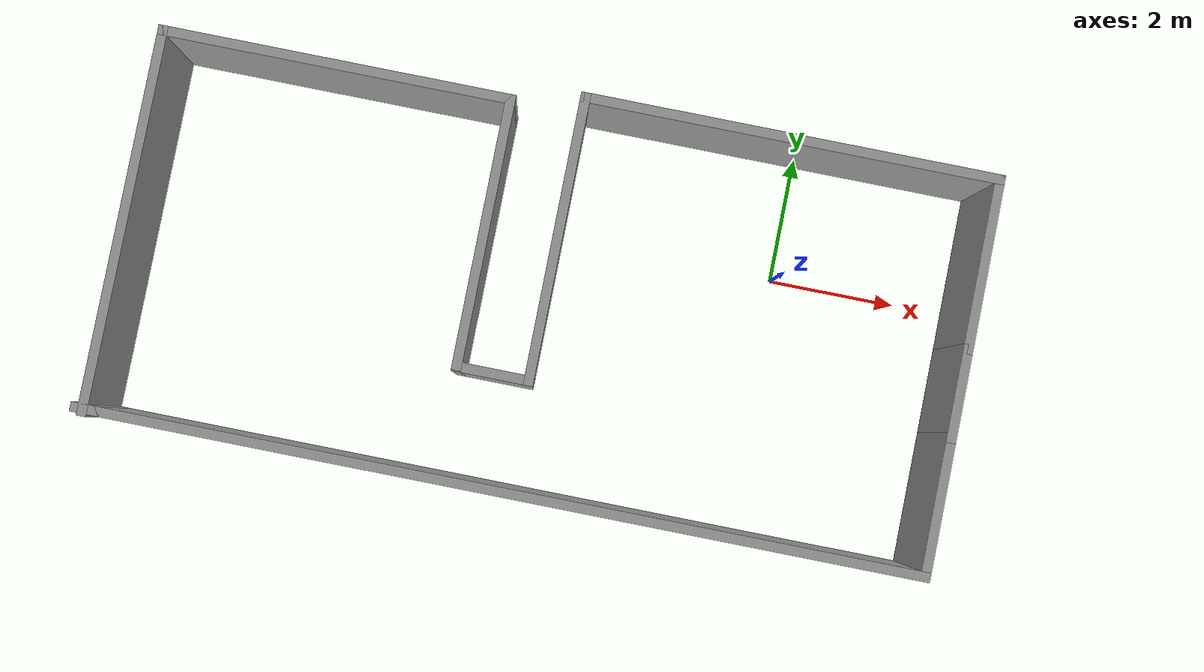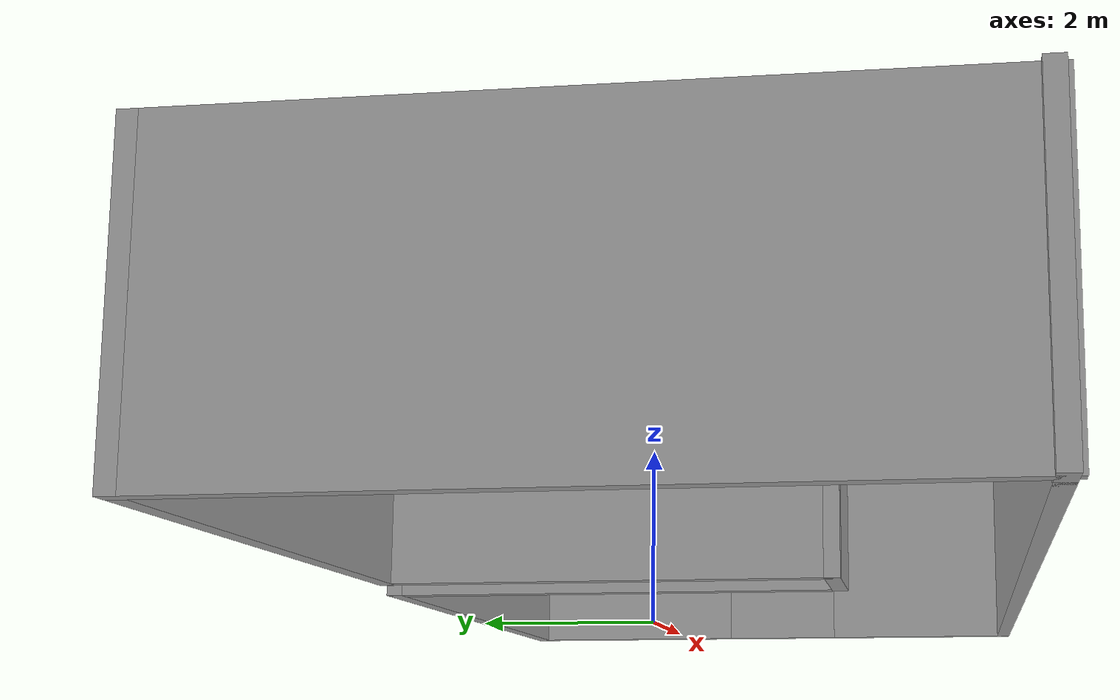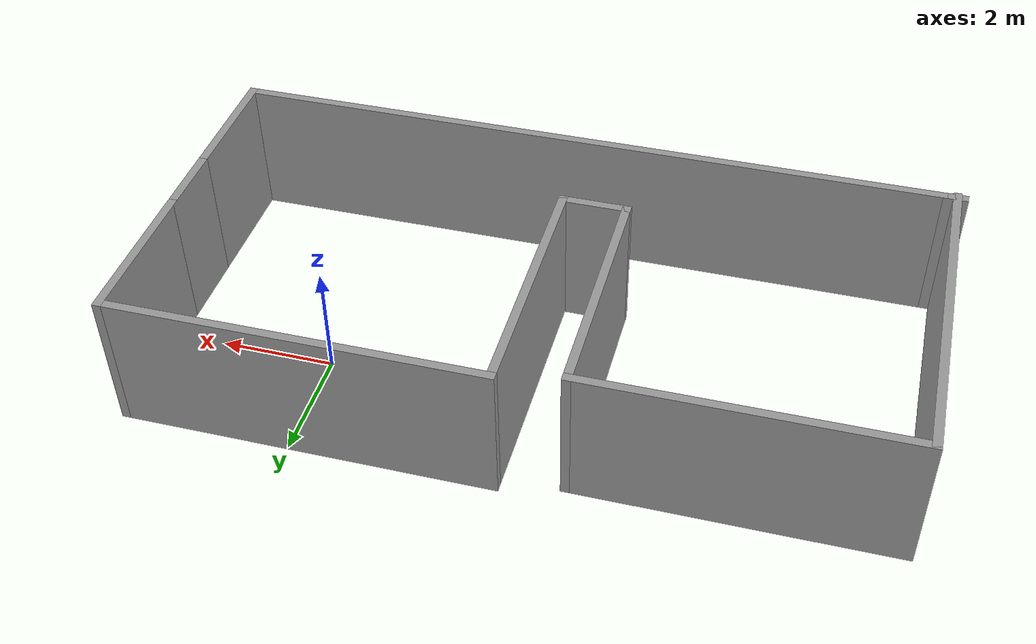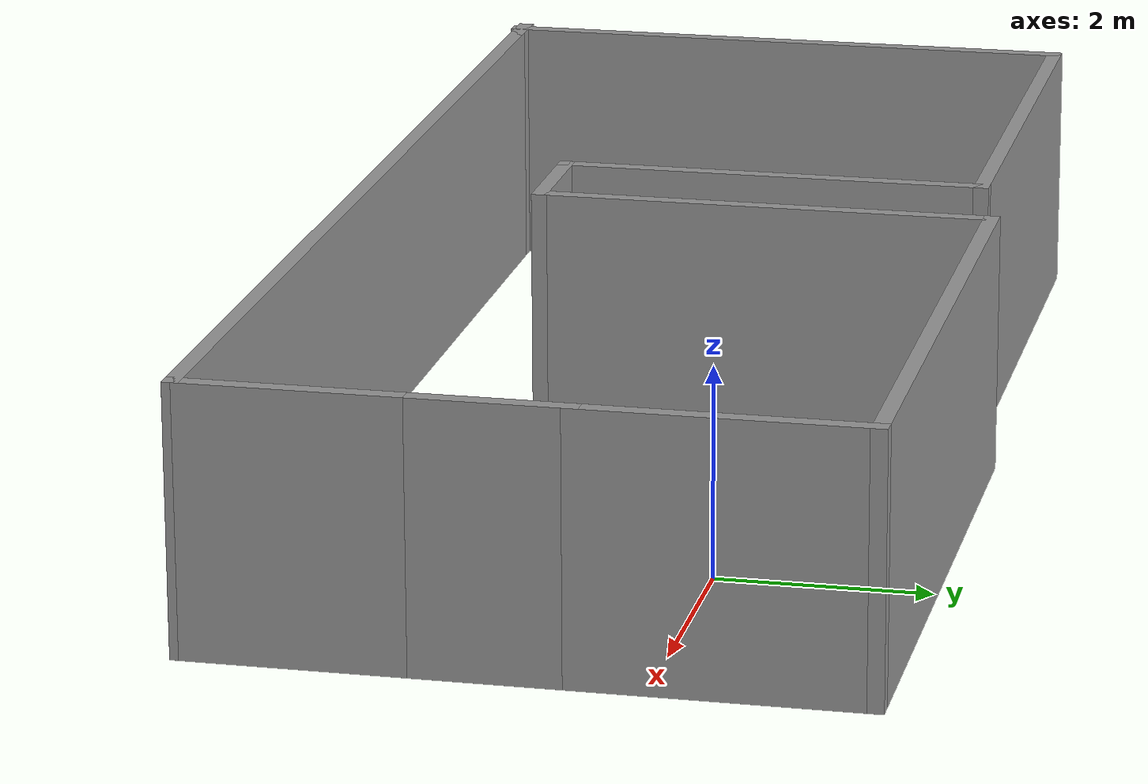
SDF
<?xml version='1.0'?>
<sdf version='1.7'>
  <model name='easy_rooms'>
    <pose>-3.59501 -1.09 0 0 -0 0</pose>
    <link name='Wall_0'>
      <collision name='Wall_0_Collision'>
        <geometry>
          <box>
            <size>12.7101 0.15 2.5</size>
          </box>
        </geometry>
        <pose>0 0 1.25 0 -0 0</pose>
      </collision>
      <visual name='Wall_0_Visual'>
        <pose>0 0 1.25 0 -0 0</pose>
        <geometry>
          <box>
            <size>12.7101 0.15 2.5</size>
          </box>
        </geometry>
        <material>
          <script>
            <uri>file://media/materials/scripts/gazebo.material</uri>
            <name>Gazebo/Grey</name>
          </script>
          <ambient>1 1 1 1</ambient>
        </material>
        <meta>
          <layer>0</layer>
        </meta>
      </visual>
      <pose>0.17497 -3.00504 0 0 -0 0.000803</pose>
    </link>
    <link name='Wall_1'>
      <collision name='Wall_1_Collision'>
        <geometry>
          <box>
            <size>2.25 0.15 2.5</size>
          </box>
        </geometry>
        <pose>0 0 1.25 0 -0 0</pose>
      </collision>
      <visual name='Wall_1_Visual'>
        <pose>0 0 1.25 0 -0 0</pose>
        <geometry>
          <box>
            <size>2.25 0.15 2.5</size>
          </box>
        </geometry>
        <material>
          <script>
            <uri>file://media/materials/scripts/gazebo.material</uri>
            <name>Gazebo/Grey</name>
          </script>
          <ambient>1 1 1 1</ambient>
        </material>
        <meta>
          <layer>0</layer>
        </meta>
      </visual>
      <pose>6.45501 -1.95 0 0 -0 1.5708</pose>
    </link>
    <link name='Wall_10'>
      <collision name='Wall_10_Collision'>
        <geometry>
          <box>
            <size>6 0.15 2.5</size>
          </box>
        </geometry>
        <pose>0 0 1.25 0 -0 0</pose>
      </collision>
      <visual name='Wall_10_Visual'>
        <pose>0 0 1.25 0 -0 0</pose>
        <geometry>
          <box>
            <size>6 0.15 2.5</size>
          </box>
        </geometry>
        <material>
          <script>
            <uri>file://media/materials/scripts/gazebo.material</uri>
            <name>Gazebo/Grey</name>
          </script>
          <ambient>1 1 1 1</ambient>
        </material>
        <meta>
          <layer>0</layer>
        </meta>
      </visual>
      <pose>-6.34499 -0.125 0 0 -0 -1.5708</pose>
    </link>
    <link name='Wall_12'>
      <collision name='Wall_12_Collision'>
        <geometry>
          <box>
            <size>0.5 0.15 2.5</size>
          </box>
        </geometry>
        <pose>0 0 1.25 0 -0 0</pose>
      </collision>
      <visual name='Wall_12_Visual'>
        <pose>0 0 1.25 0 -0 0</pose>
        <geometry>
          <box>
            <size>0.5 0.15 2.5</size>
          </box>
        </geometry>
        <material>
          <script>
            <uri>file://media/materials/scripts/gazebo.material</uri>
            <name>Gazebo/Grey</name>
          </script>
          <ambient>1 1 1 1</ambient>
        </material>
        <meta>
          <layer>0</layer>
        </meta>
      </visual>
      <pose>-6.28007 -3.01008 0 0 -0 0</pose>
    </link>
    <link name='Wall_2'>
      <collision name='Wall_2_Collision'>
        <geometry>
          <box>
            <size>1.5 0.15 2.5</size>
          </box>
        </geometry>
        <pose>0 0 1.25 0 -0 0</pose>
      </collision>
      <visual name='Wall_2_Visual'>
        <pose>0 0 1.25 0 -0 0</pose>
        <geometry>
          <box>
            <size>1.5 0.15 2.5</size>
          </box>
        </geometry>
        <material>
          <script>
            <uri>file://media/materials/scripts/gazebo.material</uri>
            <name>Gazebo/Grey</name>
          </script>
          <ambient>1 1 1 1</ambient>
        </material>
        <meta>
          <layer>0</layer>
        </meta>
      </visual>
      <pose>6.45501 -0.225 0 0 -0 1.5708</pose>
    </link>
    <link name='Wall_4'>
      <collision name='Wall_4_Collision'>
        <geometry>
          <box>
            <size>2.75 0.15 2.5</size>
          </box>
        </geometry>
        <pose>0 0 1.25 0 -0 0</pose>
      </collision>
      <visual name='Wall_4_Visual'>
        <pose>0 0 1.25 0 -0 0</pose>
        <geometry>
          <box>
            <size>2.75 0.15 2.5</size>
          </box>
        </geometry>
        <material>
          <script>
            <uri>file://media/materials/scripts/gazebo.material</uri>
            <name>Gazebo/Grey</name>
          </script>
          <ambient>1 1 1 1</ambient>
        </material>
        <meta>
          <layer>0</layer>
        </meta>
      </visual>
      <pose>6.45501 1.75 0 0 -0 1.5708</pose>
    </link>
    <link name='Wall_5'>
      <collision name='Wall_5_Collision'>
        <geometry>
          <box>
            <size>6.5 0.15 2.5</size>
          </box>
        </geometry>
        <pose>0 0 1.25 0 -0 0</pose>
      </collision>
      <visual name='Wall_5_Visual'>
        <pose>0 0 1.25 0 -0 0</pose>
        <geometry>
          <box>
            <size>6.5 0.15 2.5</size>
          </box>
        </geometry>
        <material>
          <script>
            <uri>file://media/materials/scripts/gazebo.material</uri>
            <name>Gazebo/Grey</name>
          </script>
          <ambient>1 1 1 1</ambient>
        </material>
        <meta>
          <layer>0</layer>
        </meta>
      </visual>
      <pose>3.28001 3.05 0 0 -0 3.14159</pose>
    </link>
    <link name='Wall_6'>
      <collision name='Wall_6_Collision'>
        <geometry>
          <box>
            <size>4.5 0.15 2.5</size>
          </box>
        </geometry>
        <pose>0 0 1.25 0 -0 0</pose>
      </collision>
      <visual name='Wall_6_Visual'>
        <pose>0 0 1.25 0 -0 0</pose>
        <geometry>
          <box>
            <size>4.5 0.15 2.5</size>
          </box>
        </geometry>
        <material>
          <script>
            <uri>file://media/materials/scripts/gazebo.material</uri>
            <name>Gazebo/Grey</name>
          </script>
          <ambient>1 1 1 1</ambient>
        </material>
        <meta>
          <layer>0</layer>
        </meta>
      </visual>
      <pose>0.105009 0.875 0 0 -0 -1.5708</pose>
    </link>
    <link name='Wall_7'>
      <collision name='Wall_7_Collision'>
        <geometry>
          <box>
            <size>1.25 0.15 2.5</size>
          </box>
        </geometry>
        <pose>0 0 1.25 0 -0 0</pose>
      </collision>
      <visual name='Wall_7_Visual'>
        <pose>0 0 1.25 0 -0 0</pose>
        <geometry>
          <box>
            <size>1.25 0.15 2.5</size>
          </box>
        </geometry>
        <material>
          <script>
            <uri>file://media/materials/scripts/gazebo.material</uri>
            <name>Gazebo/Grey</name>
          </script>
          <ambient>1 1 1 1</ambient>
        </material>
        <meta>
          <layer>0</layer>
        </meta>
      </visual>
      <pose>-0.444991 -1.3 0 0 -0 3.14159</pose>
    </link>
    <link name='Wall_8'>
      <collision name='Wall_8_Collision'>
        <geometry>
          <box>
            <size>4.25 0.15 2.5</size>
          </box>
        </geometry>
        <pose>0 0 1.25 0 -0 0</pose>
      </collision>
      <visual name='Wall_8_Visual'>
        <pose>0 0 1.25 0 -0 0</pose>
        <geometry>
          <box>
            <size>4.25 0.15 2.5</size>
          </box>
        </geometry>
        <material>
          <script>
            <uri>file://media/materials/scripts/gazebo.material</uri>
            <name>Gazebo/Grey</name>
          </script>
          <ambient>1 1 1 1</ambient>
        </material>
        <meta>
          <layer>0</layer>
        </meta>
      </visual>
      <pose>-0.994991 0.75 0 0 -0 1.5708</pose>
    </link>
    <link name='Wall_9'>
      <collision name='Wall_9_Collision'>
        <geometry>
          <box>
            <size>5.5 0.15 2.5</size>
          </box>
        </geometry>
        <pose>0 0 1.25 0 -0 0</pose>
      </collision>
      <visual name='Wall_9_Visual'>
        <pose>0 0 1.25 0 -0 0</pose>
        <geometry>
          <box>
            <size>5.5 0.15 2.5</size>
          </box>
        </geometry>
        <material>
          <script>
            <uri>file://media/materials/scripts/gazebo.material</uri>
            <name>Gazebo/Grey</name>
          </script>
          <ambient>1 1 1 1</ambient>
        </material>
        <meta>
          <layer>0</layer>
        </meta>
      </visual>
      <pose>-3.66999 2.8 0 0 -0 3.14159</pose>
    </link>
    <static>1</static>
  </model>
</sdf>
